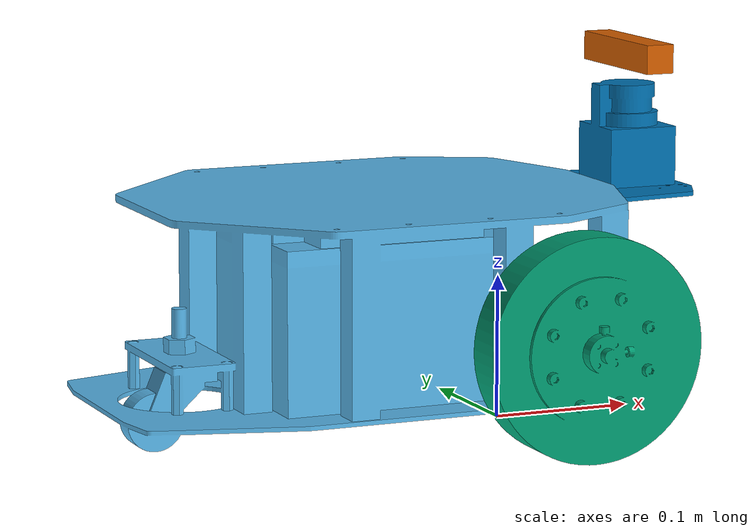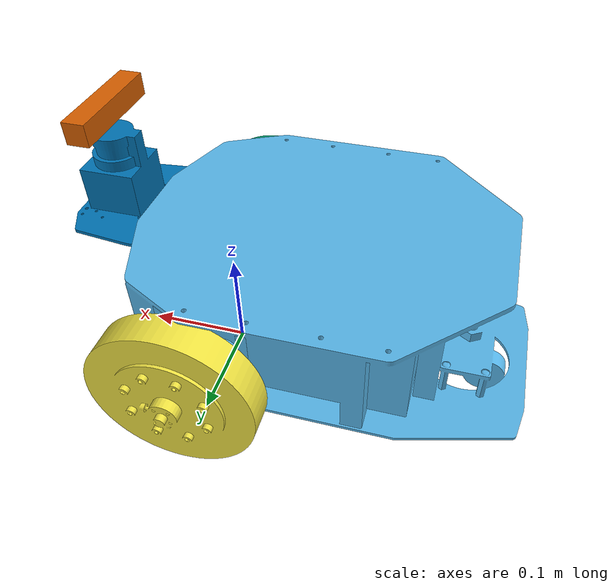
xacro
<?xml version="1.0"?>
<robot name="vmegarover" xmlns:xacro="http://ros.org/wiki/xacro">
  <xacro:arg name="use_ros2_control" default="false" />

  <xacro:include filename="$(find megarover_samples_ros2)/urdf/body/vbody.urdf.xacro"/>
  <xacro:include filename="$(find megarover_samples_ros2)/urdf/wheel/vwheel.urdf.xacro"/>
  <xacro:include filename="$(find megarover_samples_ros2)/urdf/lrf/lrf.urdf.xacro"/>
  <xacro:include filename="$(find megarover_samples_ros2)/urdf/camera/camera.urdf.xacro"/>

  <!-- =============== Link & Joint =============== -->
  <!-- Base -->
  <link name="base_footprint"/>
  <xacro:base_v0 parent="base_footprint">
    <origin xyz="0 0 0"/>
  </xacro:base_v0>

  <!-- Wheel -->
  <!-- Right Wheel -->
  <xacro:wheel_v0 prefix="right" parent="base_link">
    <!-- Using M_PI causes an error in odometry. -->
    <origin xyz="0 -0.142 0.076" rpy="-1.57 0 0"/>
    <axis xyz="0 0 1"/>
  </xacro:wheel_v0>
  <!-- Left Wheel -->
  <xacro:wheel_v0 prefix="left" parent="base_link">
    <!-- Using M_PI causes an error in odometry. -->
    <origin xyz="0 0.142 0.076" rpy="-1.57 0 0"/>
    <axis xyz="0 0 1"/>
  </xacro:wheel_v0>

  <!-- Front LRF -->

  <!-- Front LRF Upper-->
  <xacro:lrf_v0 prefix="front" parent="base_link">
    <origin xyz="0.099 0 0.2155"  rpy="${M_PI} 0 0" />
  </xacro:lrf_v0>

  <!-- Rear LRF -->

  <!-- Front Camera -->
  <xacro:camera_v0 prefix="front" parent="base_link">
    <origin xyz="0.099 0 0.2515"/>
  </xacro:camera_v0>

  <xacro:if value="$(arg use_ros2_control)">
    <!-- use ros2_control -->
    <ros2_control name="GazeboSystem" type="system">
      <hardware>
        <!-- Garden or later -->
        <plugin>gz_ros2_control/GazeboSimSystem</plugin>
      </hardware>
      <joint name="left_wheel_joint">
        <command_interface name="velocity">
          <param name="min">-1</param>
          <param name="max">1</param>
        </command_interface>
        <state_interface name="position"/>
        <state_interface name="velocity"/>
      </joint>
      <joint name="right_wheel_joint">
        <command_interface name="velocity">
          <param name="min">-1</param>
          <param name="max">1</param>
        </command_interface>
        <state_interface name="position"/>
        <state_interface name="velocity"/>
      </joint>
    </ros2_control>
    <gazebo>
      <!-- Garden or later -->
      <plugin
        filename="gz_ros2_control-system"
        name="gz_ros2_control::GazeboSimROS2ControlPlugin">
        <parameters>$(find megarover_samples_ros2)/config/diff_drive_controller.yaml</parameters>
        <ros>
          <remapping>~/cmd_vel_stamped:=/cmd_vel</remapping>
          <remapping>~/odom:=/odom</remapping>
        </ros>
      </plugin>
    </gazebo>
  </xacro:if>

  <xacro:unless value="$(arg use_ros2_control)">
    <!-- use gz-sim-diff-drive-system -->
    <gazebo>
      <!-- Garden or later -->
      <plugin
        filename="gz-sim-diff-drive-system"
        name="gz::sim::systems::DiffDrive">
        <left_joint>left_wheel_joint</left_joint>
        <right_joint>right_wheel_joint</right_joint>
        <wheel_separation>0.284</wheel_separation>
        <wheel_radius>0.076</wheel_radius>
        <odom_publish_frequency>50</odom_publish_frequency>

        <!-- Limits -->
        <max_linear_velocity>1.4</max_linear_velocity>
        <min_linear_velocity>-1.4</min_linear_velocity>
        <max_angular_velocity>3.0</max_angular_velocity>
        <min_angular_velocity>-3.0</min_angular_velocity>
        <max_linear_acceleration>2.0</max_linear_acceleration>
        <min_linear_acceleration>-2.0</min_linear_acceleration>
        <max_angular_acceleration>3.0</max_angular_acceleration>
        <min_angular_acceleration>-3.0</min_angular_acceleration>

        <!-- Output -->
        <frame_id>odom</frame_id>
        <child_frame_id>base_footprint</child_frame_id>

        <!-- Topics -->
        <topic>/cmd_vel</topic>
        <odom_topic>/odom</odom_topic>
        <tf_topic>/tf</tf_topic>
      </plugin>
      <plugin
        filename="gz-sim-joint-state-publisher-system"
        name="gz::sim::systems::JointStatePublisher">
          <topic>/joint_states</topic>
      </plugin>
    </gazebo>
  </xacro:unless>
  <!-- Ground Truth Odometry -->
  <gazebo>
    <plugin
      filename="gz-sim-odometry-publisher-system"
      name="gz::sim::systems::OdometryPublisher">
      <odom_topic>odom_truth</odom_topic>
      <odom_frame>odom</odom_frame>
      <odom_publish_frequency>50</odom_publish_frequency>
      <robot_base_frame>base_footprint</robot_base_frame>

      <!-- Ground Truth TF
            When commenting in, disable TF on the diff drive controller.
      -->
    </plugin>
  </gazebo>

  <!-- Base -->
  <xacro:base_gazebo_v0/>

  <!-- Wheel -->
  <xacro:wheel_gazebo_v0 prefix="right"/>
  <xacro:wheel_gazebo_v0 prefix="left"/>

  <!-- LRF -->
  <xacro:lrf_gazebo_v0 prefix="front"
                       min_rad="-3.14" max_rad="3.14"
                       min_range="0.06" max_range="10.0"/>

  <!-- xacro:lrf_gazebo_v0 prefix="rear"
                       min_rad="-1.57" max_rad="1.57"
                       min_range="0.06" max_range="10.0"/ -->

  <!-- Camera -->
  <xacro:camera_gazebo_v0 prefix="front"/>
</robot>

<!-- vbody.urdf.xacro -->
<robot xmlns:xacro="http://ros.org/wiki/xacro">

  <xacro:include filename="$(find megarover_samples_ros2)/urdf/body/body.gazebo.xacro"/>

  <xacro:macro name="base_v0" params="parent *joint_origin">
    <joint name="base_link_joint" type="fixed">
      <xacro:insert_block name="joint_origin"/>
      <parent link="${parent}"/>
      <child link="base_link"/>
    </joint>

    <link name="base_link">
      <visual>
        <geometry>
          <mesh filename="file://$(find megarover_samples_ros2)/models/vmegarover/meshes/dae/vmega_body.dae"/>
        </geometry>
      </visual>
      <collision>
        <geometry>
          <mesh filename="file://$(find megarover_samples_ros2)/models/vmegarover/meshes/stl/vmega_body.stl"/>
        </geometry>
      </collision>
      <inertial>
        <origin xyz="-0.061 0 -0.002"/>
        <mass value="13.754"/>
        <inertia ixx="0.110655982" ixy="0" ixz="0"
          iyy="0.20062619" iyz="0"
          izz="0.269504336" />
      </inertial>
    </link>
  </xacro:macro>

</robot>

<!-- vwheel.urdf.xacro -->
<robot xmlns:xacro="http://ros.org/wiki/xacro">

  <xacro:include filename="$(find megarover_samples_ros2)/urdf/common.xacro"/>
  <xacro:include filename="$(find megarover_samples_ros2)/urdf/wheel/wheel.gazebo.xacro"/>

  <xacro:property name="wheel_radius" value="0.076"/>
  <xacro:property name="wheel_length" value="0.03"/>
  <xacro:property name="wheel_mass" value="0.823"/>

  <xacro:macro name="wheel_v0" params="prefix parent *joint_origin *joint_axis">
    <joint name="${prefix}_wheel_joint" type="continuous">
      <xacro:insert_block name="joint_origin"/>
      <parent link="${parent}"/>
      <child link="${prefix}_wheel_link"/>
      <xacro:insert_block name="joint_axis"/>
    </joint>

    <link name="${prefix}_wheel_link">
      <visual>
        <xacro:if value="${prefix=='right'}">
          <origin xyz="0 0 0" rpy="${M_PI/2} 0 0"/>
        </xacro:if>
        <xacro:if value="${prefix=='left'}">
          <origin xyz="0 0 0" rpy="-${M_PI/2} 0 0"/>
        </xacro:if>
        <geometry>
          <mesh filename="file://$(find megarover_samples_ros2)/models/vmegarover/meshes/dae/vmega_wheel.dae"/>
        </geometry>
      </visual>
      <collision>
        <geometry>
          <cylinder radius="${wheel_radius}" length="${wheel_length}"/>
        </geometry>
      </collision>
      <inertial>
        <xacro:cylinder_inertial mass="${wheel_mass}"
          radius="${wheel_radius}" length="${wheel_length}"/>
      </inertial>
    </link>
  </xacro:macro>

</robot>

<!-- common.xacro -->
<robot xmlns:xacro="http://ros.org/wiki/xacro">
  <xacro:property name="M_PI" value="3.14159274"/>

  <xacro:macro name="cylinder_inertial" params="mass radius length">
    <mass value="${mass}"/>
    <inertia ixx="${((radius*radius)/4 + (length*length)/12)*mass}" ixy="0" ixz="0"
      iyy="${((radius*radius)/4 + (length*length)/12)*mass}" iyz="0"
      izz="${(mass*radius*radius)/2}" />
  </xacro:macro>

  <xacro:macro name="box_inertial" params="mass height width depth">
    <mass value="${mass}"/>
    <inertia ixx="${(mass*(width*width+depth*depth))/12}" ixy="0" ixz="0"
      iyy="${(mass*(height*height+depth*depth))/12}" iyz="0"
      izz="${(mass*(height*height+width*width))/12}" />
  </xacro:macro>

</robot>

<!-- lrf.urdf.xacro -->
<robot xmlns:xacro="http://ros.org/wiki/xacro">

  <xacro:include filename="$(find megarover_samples_ros2)/urdf/common.xacro"/>
  <xacro:include filename="$(find megarover_samples_ros2)/urdf/lrf/lrf.gazebo.xacro"/>

  <xacro:macro name="lrf_v0" params="prefix parent *joint_origin">
    <joint name="${prefix}_lrf_joint" type="fixed">
      <xacro:insert_block name="joint_origin"/>
      <parent link="${parent}"/>
      <child link="${prefix}_lrf_link"/>
    </joint>

    <link name="${prefix}_lrf_link">
      <visual>
        <geometry>
          <mesh filename="file://$(find megarover_samples_ros2)/models/vmegarover/meshes/dae/lrf.dae"/>
        </geometry>
      </visual>
      <collision>
        <geometry>
          <mesh filename="file://$(find megarover_samples_ros2)/models/vmegarover/meshes/stl/lrf.stl"/>
        </geometry>
      </collision>
      <inertial>
        <origin xyz="0 0 0"/>
        <xacro:box_inertial mass="0.218" height="0.07" width="0.05" depth="0.05"/>
      </inertial>
    </link>
  </xacro:macro>

</robot>

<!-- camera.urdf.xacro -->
<robot xmlns:xacro="http://ros.org/wiki/xacro">
  <xacro:include filename="$(find megarover_samples_ros2)/urdf/common.xacro"/>
  <xacro:include filename="$(find megarover_samples_ros2)/urdf/camera/camera.gazebo.xacro"/>
  <xacro:macro name="camera_v0" params="prefix parent *joint_origin">
    <joint name="${prefix}_camera_joint" type="fixed">
      <xacro:insert_block name="joint_origin"/>
      <parent link="${parent}"/>
      <child link="${prefix}_camera_link"/>
    </joint>
    <link name="${prefix}_camera_link">
      <visual>
        <origin xyz="0 0 0" rpy="0 0 0"/>
        <geometry>
          <box size="0.02 0.097 0.02"/>
        </geometry>
      </visual>
      <collision>
        <origin xyz="0 0 0" rpy="0 0 0"/>
        <geometry>
          <box size="0.02 0.097 0.02"/>
        </geometry>
      </collision>
      <inertial>
        <origin xyz="0 0 0"/>
        <xacro:box_inertial mass="0.218" height="0.07" width="0.05" depth="0.05"/>
      </inertial>
    </link>
    <link name="${prefix}_camera_optical_link"/>
    <joint name="${prefix}_camera_optical_joint" type="fixed">
      <origin xyz="0 0 0" rpy="-1.57 0 -1.57"/>
      <parent link="${prefix}_camera_link"/>
      <child link="${prefix}_camera_optical_link"/>
    </joint>
  </xacro:macro>

</robot>
